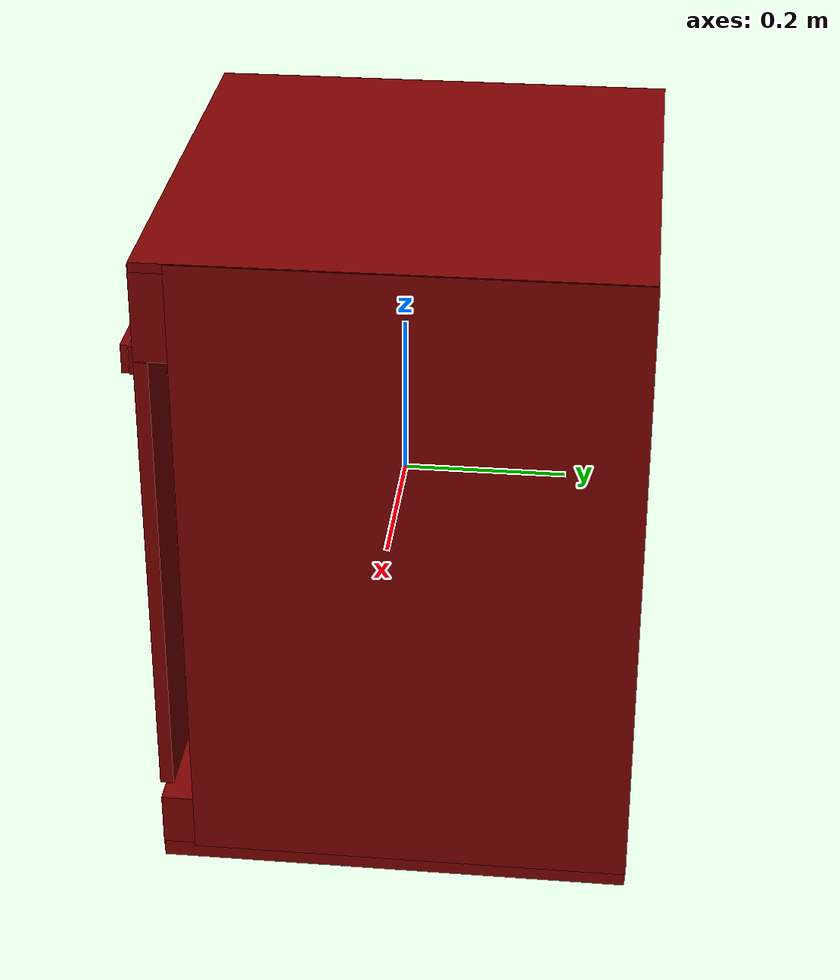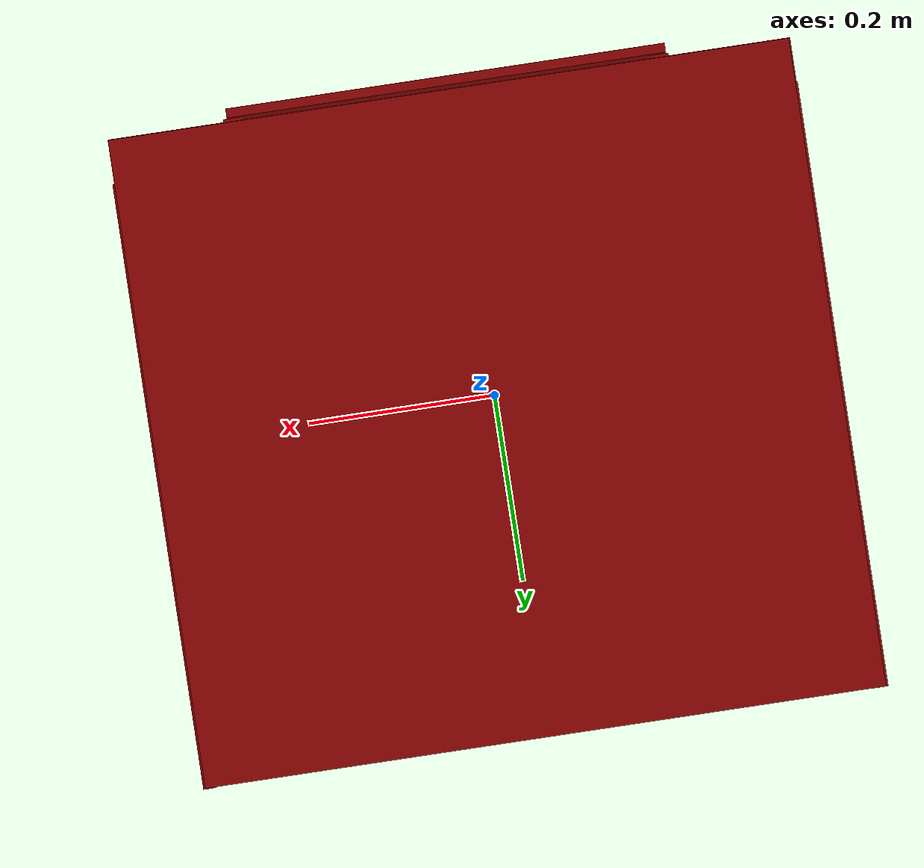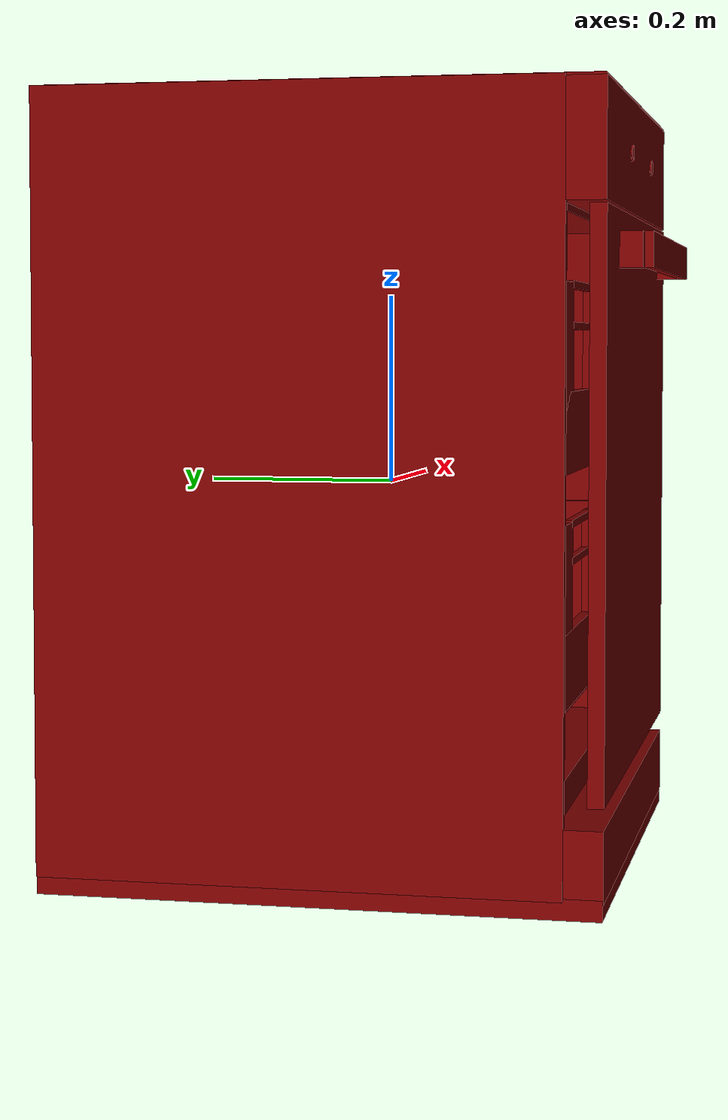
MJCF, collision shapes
<?xml version='1.0' encoding='UTF-8'?>
<mujoco model="model">
  <option timestep="0.002" gravity="0.0 0.0 -9.81"/>
  <compiler angle="radian"/>
  <asset>
    <mesh file="visuals/button_lock.obj" name="button_lock_vis"/>
    <mesh file="visuals/button_power.obj" name="button_power_vis"/>
    <mesh file="visuals/Body001.obj" name="Body001_vis"/>
    <mesh file="visuals/door.obj" name="door_vis"/>
    <mesh file="visuals/rack0.obj" name="rack0_vis"/>
    <mesh file="visuals/rack1.obj" name="rack1_vis"/>
    <texture file="visuals/T_BC001.png" name="Body001_material" type="2d"/>
    <material name="Body001_material" rgba="1 1 1 1.0" texture="Body001_material" shininess="0.5" specular="1.5"/>
    <texture file="visuals/T_BC001.png" name="button_lock_material" type="2d"/>
    <material name="button_lock_material" rgba="1 1 1 1.0" texture="button_lock_material" shininess="0.5" specular="0.3103448502657381"/>
    <texture file="visuals/T_BC001.png" name="button_power_material" type="2d"/>
    <material name="button_power_material" rgba="1 1 1 1.0" texture="button_power_material" shininess="0.5" specular="0.3103448502657381"/>
    <texture file="visuals/T_BC001.png" name="door_material" type="2d"/>
    <material name="door_material" rgba="1 1 1 1.0" texture="door_material" shininess="0.5" specular="1"/>
    <texture file="visuals/T_BC001.png" name="rack0_material" type="2d"/>
    <material name="rack0_material" rgba="1 1 1 1.0" texture="rack0_material" shininess="0.5" specular="2"/>
    <texture file="visuals/T_BC001.png" name="rack1_material" type="2d"/>
    <material name="rack1_material" rgba="1 1 1 1.0" texture="rack1_material" shininess="0.5" specular="2"/>
  </asset>
  <default>
    <default class="visual">
      <geom conaffinity="0" contype="0" group="1" type="mesh"/>
    </default>
    <default class="collision">
      <geom group="0" rgba="0.5 0 0 0.5"/>
    </default>
    <default class="spawn">
      <geom group="0" rgba="1 1 1 0.5" contype="0" conaffinity="0"/>
      <site group="0" rgba="1 1 1 0.5"/>
    </default>
    <default class="region">
      <geom group="1" conaffinity="0" contype="0" rgba="0 1 0 0"/>
    </default>
  </default>
  <worldbody>
    <body>
      <body name="object">
        <geom mesh="Body001_vis" type="mesh" solimp="0.998 0.998 0.001" solref="0.001 1" friction="0.95 0.3 0.1" class="visual" material="Body001_material"/>
        <geom class="collision" type="box" pos="0.000000 0.293684 0.009238" size="0.2974483072757721 0.0041360631585121155 0.39194753766059875" quat="1.0 0.0 0.0 0.0"/>
        <geom class="collision" type="box" pos="0.000000 0.016529 -0.389855" size="0.2974483072757721 0.28312328457832336 0.010509776882827282" quat="1.0 0.0 0.0 0.0"/>
        <geom class="collision" type="box" pos="0.000000 0.016529 0.395927" size="0.2974483072757721 0.2831236720085144 0.005803445354104042" quat="1.0 0.0 0.0 0.0"/>
        <geom class="collision" type="box" pos="-0.293147 0.035688 0.009238" size="0.006236113607883453 0.26420843601226807 0.39194872975349426" quat="1.0 0.0 0.0 0.0"/>
        <geom class="collision" type="box" pos="0.293555 0.035980 0.009238" size="0.00556898070499301 0.2645009458065033 0.3919491171836853" quat="1.0 0.0 0.0 0.0"/>
        <geom class="collision" type="box" pos="-0.000710 -0.246066 0.341205" size="0.2981281578540802 0.02128114365041256 0.058082692325115204" quat="1.0 0.0 0.0 0.0"/>
        <geom class="collision" type="box" pos="0.000000 -0.244385 -0.348737" size="0.2974436283111572 0.02297986112535 0.03576326742768288" quat="1.0 0.0 0.0 0.0"/>
        <geom class="collision" type="box" pos="-0.273172 0.040614 -0.001862" size="0.015970002859830856 0.25929391384124756 0.28350600600242615" quat="1.0 0.0 0.0 0.0"/>
        <geom class="collision" type="box" pos="0.273021 0.040614 -0.002672" size="0.016195055097341537 0.25929391384124756 0.28343233466148376" quat="1.0 0.0 0.0 0.0"/>
        <geom class="collision" type="box" pos="-0.000016 0.040614 0.335875" size="0.2906419038772583 0.25929489731788635 0.05766905099153519" quat="1.0 0.0 0.0 0.0"/>
        <geom class="collision" type="box" pos="-0.000432 0.040614 -0.309066" size="0.29022595286369324 0.2592945098876953 0.026424413546919823" quat="1.0 0.0 0.0 0.0"/>
        <body name="button_lock">
          <joint axis="0.0 1.0 0.0" pos="0.101445 -0.269704 0.341945" limited="true" name="button_lock_joint" range="0.0 0.0012" type="slide" damping="1" frictionloss="1" armature=".01" stiffness="0.05"/>
          <geom mesh="button_lock_vis" type="mesh" solimp="0.998 0.998 0.001" solref="0.001 1" friction="0.95 0.3 0.1" class="visual" material="button_lock_material"/>
          <geom class="collision" type="cylinder" pos="0.101338 -0.270872 0.341921" size="0.00803416594862938 0.0010736096883192658" quat="0.7071067094802856 0.7071068286895752 0.0 0.0"/>
        </body>
        <body name="button_power">
          <joint axis="0.0 1.0 0.0" pos="-0.101468 -0.269704 0.341945" limited="true" name="button_power_joint" range="0.0 0.0012" type="slide" damping="1" frictionloss="1" armature=".01" stiffness="0.05"/>
          <geom mesh="button_power_vis" type="mesh" solimp="0.998 0.998 0.001" solref="0.001 1" friction="0.95 0.3 0.1" class="visual" material="button_power_material"/>
          <geom class="collision" type="cylinder" pos="-0.101423 -0.270931 0.341921" size="0.00803416594862938 0.0010736096883192658" quat="0.7071067094802856 0.7071068286895752 0.0 0.0"/>
        </body>
        <body name="door">
          <joint axis="1.0 0.0 0.0" pos="0.000000 -0.229291 -0.297646" limited="true" name="door_joint" range="0.0 0.5235987755982988" type="hinge" damping="1" frictionloss="1" armature=".01" stiffness="3" springref="-2"/>
          <geom mesh="door_vis" type="mesh" solimp="0.998 0.998 0.001" solref="0.001 1" friction="0.95 0.3 0.1" class="visual" material="door_material"/>
          <geom class="collision" type="box" pos="-0.001468 -0.259695 -0.005351" size="0.29671090841293335 0.00812267791479826 0.2861667573451996" quat="1.0 0.0 0.0 0.0" name="door_main"/>
          <geom class="collision" type="box" pos="0.001495 -0.298163 0.240469" size="0.2078951597213745 0.004310023505240679 0.017797604203224182" quat="1.0 0.0 0.0 0.0" name="door_handle_main"/>
          <geom class="collision" type="box" pos="0.204156 -0.281222 0.240469" size="0.00872084591537714 0.011564495041966438 0.01779758930206299" quat="1.0 0.0 0.0 0.0"/>
          <geom class="collision" type="box" pos="-0.199824 -0.281222 0.240469" size="0.00872084591537714 0.011564495041966438 0.01779758930206299" quat="1.0 0.0 0.0 0.0"/>
        </body>
        <body name="rack0">
          <geom class="region" name="reg_rack0" type="box" pos="0.0040444999999999925 0.0287645 -0.133419" size="0.22784949999999998 0.2157315 0.096987"/>
          <joint axis="0.0 -1.0 0.0" pos="0.001571 0.026783 -0.135335" limited="true" name="rack0_joint" range="0.0 0.065" type="slide" damping="1" frictionloss="1" armature=".01" stiffness="0.05"/>
          <geom mesh="rack0_vis" type="mesh" solimp="0.998 0.998 0.001" solref="0.001 1" friction="0.95 0.3 0.1" class="visual" material="rack0_material"/>
          <geom class="collision" type="box" pos="-0.240471 0.025708 -0.135689" size="0.005536212120205164 0.23354153335094452 0.10069926083087921" quat="1.0 0.0 0.0 0.0"/>
          <geom class="collision" type="box" pos="0.244302 0.025708 -0.135689" size="0.005536212120205164 0.23354201018810272 0.10069926083087921" quat="1.0 0.0 0.0 0.0"/>
          <geom class="collision" type="box" pos="0.000253 0.252707 -0.134353" size="0.2335447371006012 0.005536194425076246 0.09926512837409973" quat="1.0 0.0 0.0 0.0"/>
          <geom class="collision" type="box" pos="0.000253 0.026005 -0.232553" size="0.23653914034366608 0.229714035987854 0.0023557692766189575" quat="1.0 0.0 0.0 0.0"/>
          <geom class="collision" type="box" pos="-0.149777 -0.202030 -0.132799" size="0.08351397514343262 0.005536250304430723 0.09600427746772766" quat="1.0 0.0 0.0 0.0"/>
          <geom class="collision" type="box" pos="0.000253 -0.202030 -0.189365" size="0.2335447371006012 0.005536250304430723 0.039437856525182724" quat="1.0 0.0 0.0 0.0"/>
          <geom class="collision" type="box" pos="0.172241 -0.202030 -0.132799" size="0.07321833819150925 0.005536250304430723 0.09600427746772766" quat="1.0 0.0 0.0 0.0"/>
          <geom class="collision" type="box" pos="0.015585 -0.199781 -0.081219" size="0.08813337981700897 0.0038762104231864214 0.0038762104231864214" quat="1.0 0.0 0.0 0.0"/>
          <geom class="collision" type="box" pos="0.015585 -0.204101 -0.038703" size="0.08813337981700897 0.0038762104231864214 0.0038762104231864214" quat="1.0 0.0 0.0 0.0"/>
          <geom class="collision" type="cylinder" pos="-0.019109 0.170651 -0.172150" size="0.0025402321480214596 0.061900075525045395" quat="4.3319283804521547e-07 -2.0873287098766014e-08 0.0992436483502388 -0.9950631856918335"/>
          <geom class="collision" type="cylinder" pos="-0.019109 0.081962 -0.172076" size="0.0025402321480214596 0.061900075525045395" quat="7.976017286637216e-07 -4.6659870633902756e-08 -0.08496011793613434 -0.9963843822479248"/>
          <geom class="collision" type="cylinder" pos="-0.019109 -0.025791 -0.172186" size="0.0025402321480214596 0.0619000680744648" quat="5.6451420960002e-07 -8.122519545850082e-08 -0.1087351143360138 -0.9940707683563232"/>
          <geom class="collision" type="cylinder" pos="-0.019109 -0.132318 -0.172076" size="0.0025402321480214596 0.061900075525045395" quat="7.976017286637216e-07 -4.6659870633902756e-08 -0.08496011793613434 -0.9963843822479248"/>
          <geom class="collision" type="cylinder" pos="-0.058553 0.170945 -0.172091" size="0.0025402321480214596 0.061900075525045395" quat="4.3319283804521547e-07 -2.0873287098766014e-08 0.0992436483502388 -0.9950631856918335"/>
          <geom class="collision" type="cylinder" pos="-0.058553 0.082257 -0.172127" size="0.0025402321480214596 0.061900075525045395" quat="7.976017286637216e-07 -4.6659870633902756e-08 -0.08496011793613434 -0.9963843822479248"/>
          <geom class="collision" type="cylinder" pos="-0.058553 -0.025499 -0.172250" size="0.0025402321480214596 0.0619000680744648" quat="5.6451420960002e-07 -8.122519545850082e-08 -0.1087351143360138 -0.9940707683563232"/>
          <geom class="collision" type="cylinder" pos="-0.058553 -0.132023 -0.172127" size="0.0025402321480214596 0.061900075525045395" quat="7.976017286637216e-07 -4.6659870633902756e-08 -0.08496011793613434 -0.9963843822479248"/>
          <geom class="collision" type="cylinder" pos="-0.096479 0.170945 -0.172091" size="0.0025402321480214596 0.061900075525045395" quat="4.3319283804521547e-07 -2.0873287098766014e-08 0.0992436483502388 -0.9950631856918335"/>
          <geom class="collision" type="cylinder" pos="-0.096479 0.082257 -0.172127" size="0.0025402321480214596 0.061900075525045395" quat="7.976017286637216e-07 -4.6659870633902756e-08 -0.08496011793613434 -0.9963843822479248"/>
          <geom class="collision" type="cylinder" pos="-0.096479 -0.025499 -0.172250" size="0.0025402321480214596 0.0619000680744648" quat="5.6451420960002e-07 -8.122519545850082e-08 -0.1087351143360138 -0.9940707683563232"/>
          <geom class="collision" type="cylinder" pos="-0.096479 -0.132023 -0.172127" size="0.0025402321480214596 0.061900075525045395" quat="7.976017286637216e-07 -4.6659870633902756e-08 -0.08496011793613434 -0.9963843822479248"/>
          <geom class="collision" type="cylinder" pos="-0.135380 0.170945 -0.172091" size="0.0025402321480214596 0.061900075525045395" quat="4.3319283804521547e-07 -2.0873287098766014e-08 0.0992436483502388 -0.9950631856918335"/>
          <geom class="collision" type="cylinder" pos="-0.135380 0.082257 -0.172127" size="0.0025402321480214596 0.061900075525045395" quat="7.976017286637216e-07 -4.6659870633902756e-08 -0.08496011793613434 -0.9963843822479248"/>
          <geom class="collision" type="cylinder" pos="-0.135380 -0.025499 -0.172250" size="0.0025402321480214596 0.0619000680744648" quat="5.6451420960002e-07 -8.122519545850082e-08 -0.1087351143360138 -0.9940707683563232"/>
          <geom class="collision" type="cylinder" pos="-0.135380 -0.132023 -0.172127" size="0.0025402321480214596 0.061900075525045395" quat="7.976017286637216e-07 -4.6659870633902756e-08 -0.08496011793613434 -0.9963843822479248"/>
          <geom class="collision" type="cylinder" pos="-0.165532 0.170945 -0.172091" size="0.0025402321480214596 0.061900075525045395" quat="4.3319283804521547e-07 -2.0873287098766014e-08 0.0992436483502388 -0.9950631856918335"/>
          <geom class="collision" type="cylinder" pos="-0.165532 0.082257 -0.172127" size="0.0025402321480214596 0.061900075525045395" quat="7.976017286637216e-07 -4.6659870633902756e-08 -0.08496011793613434 -0.9963843822479248"/>
          <geom class="collision" type="cylinder" pos="-0.165532 -0.025499 -0.172250" size="0.0025402321480214596 0.0619000680744648" quat="5.6451420960002e-07 -8.122519545850082e-08 -0.1087351143360138 -0.9940707683563232"/>
          <geom class="collision" type="cylinder" pos="-0.165532 -0.132023 -0.172127" size="0.0025402321480214596 0.061900075525045395" quat="7.976017286637216e-07 -4.6659870633902756e-08 -0.08496011793613434 -0.9963843822479248"/>
          <geom class="collision" type="cylinder" pos="-0.204724 0.170945 -0.172091" size="0.0025402321480214596 0.061900075525045395" quat="4.3319283804521547e-07 -2.0873287098766014e-08 0.0992436483502388 -0.9950631856918335"/>
          <geom class="collision" type="cylinder" pos="-0.204724 0.082257 -0.172127" size="0.0025402321480214596 0.061900075525045395" quat="7.976017286637216e-07 -4.6659870633902756e-08 -0.08496011793613434 -0.9963843822479248"/>
          <geom class="collision" type="cylinder" pos="-0.204724 -0.025499 -0.172250" size="0.0025402321480214596 0.0619000680744648" quat="5.6451420960002e-07 -8.122519545850082e-08 -0.1087351143360138 -0.9940707683563232"/>
          <geom class="collision" type="cylinder" pos="-0.204724 -0.132023 -0.172127" size="0.0025402321480214596 0.061900075525045395" quat="7.976017286637216e-07 -4.6659870633902756e-08 -0.08496011793613434 -0.9963843822479248"/>
          <geom class="collision" type="cylinder" pos="0.018462 0.170945 -0.172091" size="0.0025402321480214596 0.061900075525045395" quat="4.3319283804521547e-07 -2.0873287098766014e-08 0.0992436483502388 -0.9950631856918335"/>
          <geom class="collision" type="cylinder" pos="0.018462 0.082257 -0.172127" size="0.0025402321480214596 0.061900075525045395" quat="7.976017286637216e-07 -4.6659870633902756e-08 -0.08496011793613434 -0.9963843822479248"/>
          <geom class="collision" type="cylinder" pos="0.018462 -0.025499 -0.172250" size="0.0025402321480214596 0.0619000680744648" quat="5.6451420960002e-07 -8.122519545850082e-08 -0.1087351143360138 -0.9940707683563232"/>
          <geom class="collision" type="cylinder" pos="0.018462 -0.132023 -0.172127" size="0.0025402321480214596 0.061900075525045395" quat="7.976017286637216e-07 -4.6659870633902756e-08 -0.08496011793613434 -0.9963843822479248"/>
          <geom class="collision" type="cylinder" pos="0.057536 0.170945 -0.172091" size="0.0025402321480214596 0.061900075525045395" quat="4.3319283804521547e-07 -2.0873287098766014e-08 0.0992436483502388 -0.9950631856918335"/>
          <geom class="collision" type="cylinder" pos="0.057536 0.082257 -0.172127" size="0.0025402321480214596 0.061900075525045395" quat="7.976017286637216e-07 -4.6659870633902756e-08 -0.08496011793613434 -0.9963843822479248"/>
          <geom class="collision" type="cylinder" pos="0.057536 -0.025499 -0.172250" size="0.0025402321480214596 0.0619000680744648" quat="5.6451420960002e-07 -8.122519545850082e-08 -0.1087351143360138 -0.9940707683563232"/>
          <geom class="collision" type="cylinder" pos="0.057536 -0.132023 -0.172127" size="0.0025402321480214596 0.061900075525045395" quat="7.976017286637216e-07 -4.6659870633902756e-08 -0.08496011793613434 -0.9963843822479248"/>
          <geom class="collision" type="cylinder" pos="0.095709 0.170945 -0.172091" size="0.0025402321480214596 0.061900075525045395" quat="4.3319283804521547e-07 -2.0873287098766014e-08 0.0992436483502388 -0.9950631856918335"/>
          <geom class="collision" type="cylinder" pos="0.095709 0.082257 -0.172127" size="0.0025402321480214596 0.061900075525045395" quat="7.976017286637216e-07 -4.6659870633902756e-08 -0.08496011793613434 -0.9963843822479248"/>
          <geom class="collision" type="cylinder" pos="0.095709 -0.025499 -0.172250" size="0.0025402321480214596 0.0619000680744648" quat="5.6451420960002e-07 -8.122519545850082e-08 -0.1087351143360138 -0.9940707683563232"/>
          <geom class="collision" type="cylinder" pos="0.095709 -0.132023 -0.172127" size="0.0025402321480214596 0.061900075525045395" quat="7.976017286637216e-07 -4.6659870633902756e-08 -0.08496011793613434 -0.9963843822479248"/>
          <geom class="collision" type="cylinder" pos="0.134236 0.170945 -0.172091" size="0.0025402321480214596 0.061900075525045395" quat="4.3319283804521547e-07 -2.0873287098766014e-08 0.0992436483502388 -0.9950631856918335"/>
          <geom class="collision" type="cylinder" pos="0.134236 0.082257 -0.172127" size="0.0025402321480214596 0.061900075525045395" quat="7.976017286637216e-07 -4.6659870633902756e-08 -0.08496011793613434 -0.9963843822479248"/>
          <geom class="collision" type="cylinder" pos="0.134236 -0.025499 -0.172250" size="0.0025402321480214596 0.0619000680744648" quat="5.6451420960002e-07 -8.122519545850082e-08 -0.1087351143360138 -0.9940707683563232"/>
          <geom class="collision" type="cylinder" pos="0.134236 -0.132023 -0.172127" size="0.0025402321480214596 0.061900075525045395" quat="7.976017286637216e-07 -4.6659870633902756e-08 -0.08496011793613434 -0.9963843822479248"/>
          <geom class="collision" type="cylinder" pos="0.173250 0.170945 -0.172091" size="0.0025402321480214596 0.061900075525045395" quat="4.3319283804521547e-07 -2.0873287098766014e-08 0.0992436483502388 -0.9950631856918335"/>
          <geom class="collision" type="cylinder" pos="0.173250 0.082257 -0.172127" size="0.0025402321480214596 0.061900075525045395" quat="7.976017286637216e-07 -4.6659870633902756e-08 -0.08496011793613434 -0.9963843822479248"/>
          <geom class="collision" type="cylinder" pos="0.173250 -0.025499 -0.172250" size="0.0025402321480214596 0.0619000680744648" quat="5.6451420960002e-07 -8.122519545850082e-08 -0.1087351143360138 -0.9940707683563232"/>
          <geom class="collision" type="cylinder" pos="0.173250 -0.132023 -0.172127" size="0.0025402321480214596 0.061900075525045395" quat="7.976017286637216e-07 -4.6659870633902756e-08 -0.08496011793613434 -0.9963843822479248"/>
          <geom class="collision" type="cylinder" pos="0.211944 0.170945 -0.172091" size="0.0025402321480214596 0.061900075525045395" quat="4.3319283804521547e-07 -2.0873287098766014e-08 0.0992436483502388 -0.9950631856918335"/>
          <geom class="collision" type="cylinder" pos="0.211944 0.082257 -0.172127" size="0.0025402321480214596 0.061900075525045395" quat="7.976017286637216e-07 -4.6659870633902756e-08 -0.08496011793613434 -0.9963843822479248"/>
          <geom class="collision" type="cylinder" pos="0.211944 -0.025499 -0.172250" size="0.0025402321480214596 0.0619000680744648" quat="5.6451420960002e-07 -8.122519545850082e-08 -0.1087351143360138 -0.9940707683563232"/>
          <geom class="collision" type="cylinder" pos="0.211944 -0.132023 -0.172127" size="0.0025402321480214596 0.061900075525045395" quat="7.976017286637216e-07 -4.6659870633902756e-08 -0.08496011793613434 -0.9963843822479248"/>
        </body>
        <body name="rack1">
          <geom class="region" name="reg_rack1" type="box" pos="0.0040444999999999925 0.0287645 0.11678899999999999" size="0.22784949999999998 0.2157315 0.096732"/>
          <joint axis="0.0 -1.0 0.0" pos="0.001571 0.026783 0.114609" limited="true" name="rack1_joint" range="0.0 0.21" type="slide" damping="1" frictionloss="1" armature=".01" stiffness="0.05"/>
          <geom mesh="rack1_vis" type="mesh" solimp="0.998 0.998 0.001" solref="0.001 1" friction="0.95 0.3 0.1" class="visual" material="rack1_material"/>
          <geom class="collision" type="box" pos="-0.240471 0.025708 0.113640" size="0.005536212120205164 0.2335447371006012 0.09884707629680634" quat="1.0 0.0 0.0 0.0"/>
          <geom class="collision" type="box" pos="0.243724 0.025708 0.113640" size="0.005536212120205164 0.2335447371006012 0.09884707629680634" quat="1.0 0.0 0.0 0.0"/>
          <geom class="collision" type="box" pos="-0.149777 -0.202030 0.113640" size="0.08351397514343262 0.005536250304430723 0.09884707629680634" quat="1.0 0.0 0.0 0.0"/>
          <geom class="collision" type="box" pos="0.000253 0.256108 0.113640" size="0.2335447371006012 0.005536250304430723 0.09884707629680634" quat="1.0 0.0 0.0 0.0"/>
          <geom class="collision" type="box" pos="0.000253 0.027830 0.020848" size="0.23218710720539093 0.23050116002559662 0.005536185577511787" quat="1.0 0.0 0.0 0.0"/>
          <geom class="collision" type="box" pos="0.000253 -0.202030 0.057074" size="0.2335447371006012 0.005536250304430723 0.0422806590795517" quat="1.0 0.0 0.0 0.0"/>
          <geom class="collision" type="box" pos="0.172241 -0.202030 0.113640" size="0.07321833819150925 0.005536250304430723 0.09884707629680634" quat="1.0 0.0 0.0 0.0"/>
          <geom class="collision" type="box" pos="0.015585 -0.199781 0.168063" size="0.08813337981700897 0.0038762104231864214 0.0038762104231864214" quat="1.0 0.0 0.0 0.0"/>
          <geom class="collision" type="box" pos="0.015585 -0.204101 0.210579" size="0.08813337981700897 0.0038762104231864214 0.0038762104231864214" quat="1.0 0.0 0.0 0.0"/>
          <geom class="collision" type="cylinder" pos="0.211944 0.170945 0.077857" size="0.0025402321480214596 0.061900075525045395" quat="4.3319283804521547e-07 -2.0873287098766014e-08 0.0992436483502388 -0.9950631856918335"/>
          <geom class="collision" type="cylinder" pos="0.173250 0.170945 0.077857" size="0.0025402321480214596 0.061900075525045395" quat="4.3319283804521547e-07 -2.0873287098766014e-08 0.0992436483502388 -0.9950631856918335"/>
          <geom class="collision" type="cylinder" pos="0.134236 0.170945 0.077857" size="0.0025402321480214596 0.061900075525045395" quat="4.3319283804521547e-07 -2.0873287098766014e-08 0.0992436483502388 -0.9950631856918335"/>
          <geom class="collision" type="cylinder" pos="0.095709 0.170945 0.077857" size="0.0025402321480214596 0.061900075525045395" quat="4.3319283804521547e-07 -2.0873287098766014e-08 0.0992436483502388 -0.9950631856918335"/>
          <geom class="collision" type="cylinder" pos="0.057536 0.170945 0.077857" size="0.0025402321480214596 0.061900075525045395" quat="4.3319283804521547e-07 -2.0873287098766014e-08 0.0992436483502388 -0.9950631856918335"/>
          <geom class="collision" type="cylinder" pos="0.018462 0.170945 0.077857" size="0.0025402321480214596 0.061900075525045395" quat="4.3319283804521547e-07 -2.0873287098766014e-08 0.0992436483502388 -0.9950631856918335"/>
          <geom class="collision" type="cylinder" pos="-0.204724 0.170945 0.077857" size="0.0025402321480214596 0.061900075525045395" quat="4.3319283804521547e-07 -2.0873287098766014e-08 0.0992436483502388 -0.9950631856918335"/>
          <geom class="collision" type="cylinder" pos="-0.165532 0.170945 0.077857" size="0.0025402321480214596 0.061900075525045395" quat="4.3319283804521547e-07 -2.0873287098766014e-08 0.0992436483502388 -0.9950631856918335"/>
          <geom class="collision" type="cylinder" pos="-0.135380 0.170945 0.077857" size="0.0025402321480214596 0.061900075525045395" quat="4.3319283804521547e-07 -2.0873287098766014e-08 0.0992436483502388 -0.9950631856918335"/>
          <geom class="collision" type="cylinder" pos="-0.096479 0.170945 0.077857" size="0.0025402321480214596 0.061900075525045395" quat="4.3319283804521547e-07 -2.0873287098766014e-08 0.0992436483502388 -0.9950631856918335"/>
          <geom class="collision" type="cylinder" pos="-0.058553 0.170945 0.077857" size="0.0025402321480214596 0.061900075525045395" quat="4.3319283804521547e-07 -2.0873287098766014e-08 0.0992436483502388 -0.9950631856918335"/>
          <geom class="collision" type="cylinder" pos="-0.019109 0.170651 0.077798" size="0.0025402321480214596 0.061900075525045395" quat="4.3319283804521547e-07 -2.0873287098766014e-08 0.0992436483502388 -0.9950631856918335"/>
          <geom class="collision" type="cylinder" pos="0.211944 0.082257 0.077821" size="0.0025402321480214596 0.061900075525045395" quat="7.976017286637216e-07 -4.6659870633902756e-08 -0.08496011793613434 -0.9963843822479248"/>
          <geom class="collision" type="cylinder" pos="0.173250 0.082257 0.077821" size="0.0025402321480214596 0.061900075525045395" quat="7.976017286637216e-07 -4.6659870633902756e-08 -0.08496011793613434 -0.9963843822479248"/>
          <geom class="collision" type="cylinder" pos="0.134236 0.082257 0.077821" size="0.0025402321480214596 0.061900075525045395" quat="7.976017286637216e-07 -4.6659870633902756e-08 -0.08496011793613434 -0.9963843822479248"/>
          <geom class="collision" type="cylinder" pos="0.095709 0.082257 0.077821" size="0.0025402321480214596 0.061900075525045395" quat="7.976017286637216e-07 -4.6659870633902756e-08 -0.08496011793613434 -0.9963843822479248"/>
          <geom class="collision" type="cylinder" pos="0.057536 0.082257 0.077821" size="0.0025402321480214596 0.061900075525045395" quat="7.976017286637216e-07 -4.6659870633902756e-08 -0.08496011793613434 -0.9963843822479248"/>
          <geom class="collision" type="cylinder" pos="0.018462 0.082257 0.077821" size="0.0025402321480214596 0.061900075525045395" quat="7.976017286637216e-07 -4.6659870633902756e-08 -0.08496011793613434 -0.9963843822479248"/>
          <geom class="collision" type="cylinder" pos="-0.204724 0.082257 0.077821" size="0.0025402321480214596 0.061900075525045395" quat="7.976017286637216e-07 -4.6659870633902756e-08 -0.08496011793613434 -0.9963843822479248"/>
          <geom class="collision" type="cylinder" pos="-0.165532 0.082257 0.077821" size="0.0025402321480214596 0.061900075525045395" quat="7.976017286637216e-07 -4.6659870633902756e-08 -0.08496011793613434 -0.9963843822479248"/>
          <geom class="collision" type="cylinder" pos="-0.135380 0.082257 0.077821" size="0.0025402321480214596 0.061900075525045395" quat="7.976017286637216e-07 -4.6659870633902756e-08 -0.08496011793613434 -0.9963843822479248"/>
          <geom class="collision" type="cylinder" pos="-0.096479 0.082257 0.077821" size="0.0025402321480214596 0.061900075525045395" quat="7.976017286637216e-07 -4.6659870633902756e-08 -0.08496011793613434 -0.9963843822479248"/>
          <geom class="collision" type="cylinder" pos="-0.058553 0.082257 0.077821" size="0.0025402321480214596 0.061900075525045395" quat="7.976017286637216e-07 -4.6659870633902756e-08 -0.08496011793613434 -0.9963843822479248"/>
          <geom class="collision" type="cylinder" pos="-0.019109 0.081962 0.077872" size="0.0025402321480214596 0.061900075525045395" quat="7.976017286637216e-07 -4.6659870633902756e-08 -0.08496011793613434 -0.9963843822479248"/>
          <geom class="collision" type="cylinder" pos="0.211944 -0.025499 0.077698" size="0.0025402321480214596 0.0619000680744648" quat="5.6451420960002e-07 -8.122519545850082e-08 -0.1087351143360138 -0.9940707683563232"/>
          <geom class="collision" type="cylinder" pos="0.173250 -0.025499 0.077698" size="0.0025402321480214596 0.0619000680744648" quat="5.6451420960002e-07 -8.122519545850082e-08 -0.1087351143360138 -0.9940707683563232"/>
          <geom class="collision" type="cylinder" pos="0.134236 -0.025499 0.077698" size="0.0025402321480214596 0.0619000680744648" quat="5.6451420960002e-07 -8.122519545850082e-08 -0.1087351143360138 -0.9940707683563232"/>
          <geom class="collision" type="cylinder" pos="0.095709 -0.025499 0.077698" size="0.0025402321480214596 0.0619000680744648" quat="5.6451420960002e-07 -8.122519545850082e-08 -0.1087351143360138 -0.9940707683563232"/>
          <geom class="collision" type="cylinder" pos="0.057536 -0.025499 0.077698" size="0.0025402321480214596 0.0619000680744648" quat="5.6451420960002e-07 -8.122519545850082e-08 -0.1087351143360138 -0.9940707683563232"/>
          <geom class="collision" type="cylinder" pos="0.018462 -0.025499 0.077698" size="0.0025402321480214596 0.0619000680744648" quat="5.6451420960002e-07 -8.122519545850082e-08 -0.1087351143360138 -0.9940707683563232"/>
          <geom class="collision" type="cylinder" pos="-0.204724 -0.025499 0.077698" size="0.0025402321480214596 0.0619000680744648" quat="5.6451420960002e-07 -8.122519545850082e-08 -0.1087351143360138 -0.9940707683563232"/>
          <geom class="collision" type="cylinder" pos="-0.165532 -0.025499 0.077698" size="0.0025402321480214596 0.0619000680744648" quat="5.6451420960002e-07 -8.122519545850082e-08 -0.1087351143360138 -0.9940707683563232"/>
          <geom class="collision" type="cylinder" pos="-0.135380 -0.025499 0.077698" size="0.0025402321480214596 0.0619000680744648" quat="5.6451420960002e-07 -8.122519545850082e-08 -0.1087351143360138 -0.9940707683563232"/>
          <geom class="collision" type="cylinder" pos="-0.096479 -0.025499 0.077698" size="0.0025402321480214596 0.0619000680744648" quat="5.6451420960002e-07 -8.122519545850082e-08 -0.1087351143360138 -0.9940707683563232"/>
          <geom class="collision" type="cylinder" pos="-0.058553 -0.025499 0.077698" size="0.0025402321480214596 0.0619000680744648" quat="5.6451420960002e-07 -8.122519545850082e-08 -0.1087351143360138 -0.9940707683563232"/>
          <geom class="collision" type="cylinder" pos="-0.019109 -0.025791 0.077762" size="0.0025402321480214596 0.0619000680744648" quat="5.6451420960002e-07 -8.122519545850082e-08 -0.1087351143360138 -0.9940707683563232"/>
          <geom class="collision" type="cylinder" pos="0.211944 -0.132023 0.077821" size="0.0025402321480214596 0.061900075525045395" quat="7.976017286637216e-07 -4.6659870633902756e-08 -0.08496011793613434 -0.9963843822479248"/>
          <geom class="collision" type="cylinder" pos="0.173250 -0.132023 0.077821" size="0.0025402321480214596 0.061900075525045395" quat="7.976017286637216e-07 -4.6659870633902756e-08 -0.08496011793613434 -0.9963843822479248"/>
          <geom class="collision" type="cylinder" pos="0.134236 -0.132023 0.077821" size="0.0025402321480214596 0.061900075525045395" quat="7.976017286637216e-07 -4.6659870633902756e-08 -0.08496011793613434 -0.9963843822479248"/>
          <geom class="collision" type="cylinder" pos="0.095709 -0.132023 0.077821" size="0.0025402321480214596 0.061900075525045395" quat="7.976017286637216e-07 -4.6659870633902756e-08 -0.08496011793613434 -0.9963843822479248"/>
          <geom class="collision" type="cylinder" pos="0.057536 -0.132023 0.077821" size="0.0025402321480214596 0.061900075525045395" quat="7.976017286637216e-07 -4.6659870633902756e-08 -0.08496011793613434 -0.9963843822479248"/>
          <geom class="collision" type="cylinder" pos="0.018462 -0.132023 0.077821" size="0.0025402321480214596 0.061900075525045395" quat="7.976017286637216e-07 -4.6659870633902756e-08 -0.08496011793613434 -0.9963843822479248"/>
          <geom class="collision" type="cylinder" pos="-0.204724 -0.132023 0.077821" size="0.0025402321480214596 0.061900075525045395" quat="7.976017286637216e-07 -4.6659870633902756e-08 -0.08496011793613434 -0.9963843822479248"/>
          <geom class="collision" type="cylinder" pos="-0.165532 -0.132023 0.077821" size="0.0025402321480214596 0.061900075525045395" quat="7.976017286637216e-07 -4.6659870633902756e-08 -0.08496011793613434 -0.9963843822479248"/>
          <geom class="collision" type="cylinder" pos="-0.135380 -0.132023 0.077821" size="0.0025402321480214596 0.061900075525045395" quat="7.976017286637216e-07 -4.6659870633902756e-08 -0.08496011793613434 -0.9963843822479248"/>
          <geom class="collision" type="cylinder" pos="-0.096479 -0.132023 0.077821" size="0.0025402321480214596 0.061900075525045395" quat="7.976017286637216e-07 -4.6659870633902756e-08 -0.08496011793613434 -0.9963843822479248"/>
          <geom class="collision" type="cylinder" pos="-0.058553 -0.132023 0.077821" size="0.0025402321480214596 0.061900075525045395" quat="7.976017286637216e-07 -4.6659870633902756e-08 -0.08496011793613434 -0.9963843822479248"/>
          <geom class="collision" type="cylinder" pos="-0.019109 -0.132318 0.077872" size="0.0025402321480214596 0.061900075525045395" quat="7.976017286637216e-07 -4.6659870633902756e-08 -0.08496011793613434 -0.9963843822479248"/>
        </body>
        <geom class="region" name="reg_int" type="box" pos="0.00019600000000000173 0.016865999999999992 -0.004068500000000003" size="0.261111 0.244786 0.28606849999999995"/>
        <geom class="region" name="reg_main" type="box" pos="0.0 0.016709 0.0" size="0.3 0.28500000000000003 0.402456"/>
      </body>
    </body>
  </worldbody>
  <actuator>
    <motor name="button_lock_joint_actuator" joint="button_lock_joint" gear="0.5"/>
    <motor name="button_power_joint_actuator" joint="button_power_joint" gear="0.5"/>
    <motor name="door_joint_actuator" joint="door_joint" gear="50"/>
    <motor name="rack0_joint_actuator" joint="rack0_joint" gear="10"/>
    <motor name="rack1_joint_actuator" joint="rack1_joint" gear="10"/>
  </actuator>
</mujoco>
